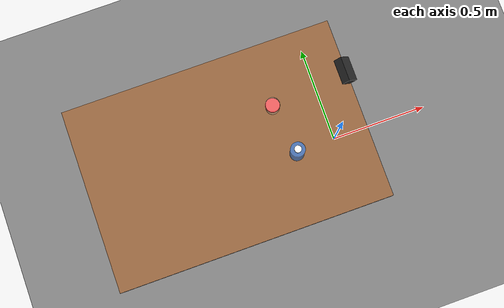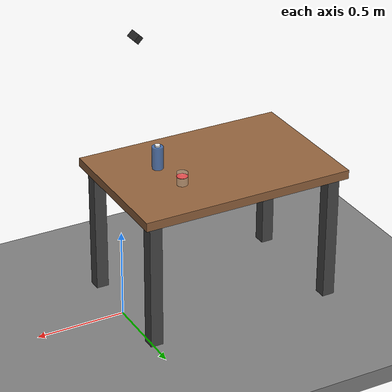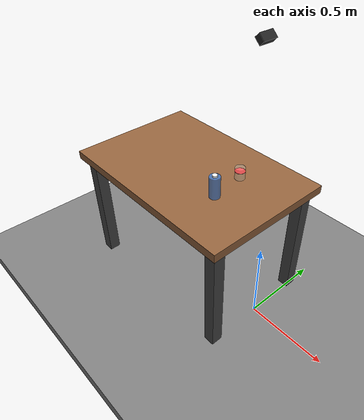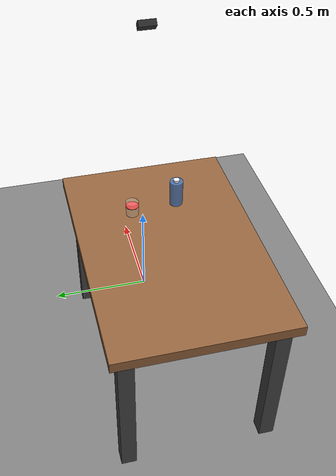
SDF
<?xml version="1.0" ?>
<sdf version="1.8">
  <world name="empty">
    <gravity>0 0 -9.8</gravity>

    <plugin filename="gz-sim-physics-system" name="gz::sim::systems::Physics"/>
    <plugin filename="gz-sim-user-commands-system" name="gz::sim::systems::UserCommands"/>
    <plugin filename="gz-sim-scene-broadcaster-system" name="gz::sim::systems::SceneBroadcaster"/>
    <plugin filename="gz-sim-sensors-system" name="gz::sim::systems::Sensors">
      <render_engine>ogre2</render_engine>
    </plugin>
    <plugin filename="gz-sim-contact-system" name="gz::sim::systems::Contact"/>

    <light type="directional" name="sun">
      <cast_shadows>true</cast_shadows>
      <pose>0 0 10 0 0 0</pose>
      <diffuse>0.8 0.8 0.8 1</diffuse>
      <specular>0.2 0.2 0.2 1</specular>
      <attenuation>
        <range>1000</range>
        <constant>0.9</constant>
        <linear>0.01</linear>
        <quadratic>0.001</quadratic>
      </attenuation>
      <direction>-0.5 0.1 -0.9</direction>
    </light>

    <!-- ══════════════════════════════════════════════════════════
         Ground Plane
         ══════════════════════════════════════════════════════════ -->
    <model name="ground_plane">
      <static>true</static>
      <pose>0 0 -0.05 0 0 0</pose>
      <link name="link">
        <collision name="collision">
          <geometry>
            <box><size>100 100 0.1</size></box>
          </geometry>
        </collision>
        <visual name="visual">
          <geometry>
            <box><size>100 100 0.1</size></box>
          </geometry>
          <material>
            <ambient>0.3 0.3 0.3 1</ambient>
            <diffuse>0.5 0.5 0.5 1</diffuse>
            <specular>0.1 0.1 0.1 1</specular>
          </material>
        </visual>
      </link>
    </model>

    <!-- ══════════════════════════════════════════════════════════
         Workbench Table
         ══════════════════════════════════════════════════════════ -->
    <model name="workbench_table">
      <static>true</static>
      <pose>-0.55 0 0 0 0 0</pose>
      <link name="table_link">
        <collision name="top_collision">
          <pose>0 0 0.75 0 0 0</pose>
          <geometry>
            <box><size>1.2 0.8 0.05</size></box>
          </geometry>
          <surface>
            <friction>
              <ode><mu>1.0</mu><mu2>1.0</mu2></ode>
            </friction>
          </surface>
        </collision>
        <visual name="top_visual">
          <pose>0 0 0.75 0 0 0</pose>
          <geometry>
            <box><size>1.2 0.8 0.05</size></box>
          </geometry>
          <material>
            <ambient>0.48 0.32 0.20 1</ambient>
            <diffuse>0.58 0.39 0.24 1</diffuse>
            <specular>0.12 0.12 0.12 1</specular>
          </material>
        </visual>

        <collision name="leg_fl_collision">
          <pose>0.53 0.33 0.375 0 0 0</pose>
          <geometry><box><size>0.07 0.07 0.75</size></box></geometry>
        </collision>
        <collision name="leg_fr_collision">
          <pose>0.53 -0.33 0.375 0 0 0</pose>
          <geometry><box><size>0.07 0.07 0.75</size></box></geometry>
        </collision>
        <collision name="leg_rl_collision">
          <pose>-0.53 0.33 0.375 0 0 0</pose>
          <geometry><box><size>0.07 0.07 0.75</size></box></geometry>
        </collision>
        <collision name="leg_rr_collision">
          <pose>-0.53 -0.33 0.375 0 0 0</pose>
          <geometry><box><size>0.07 0.07 0.75</size></box></geometry>
        </collision>

        <visual name="leg_fl_visual">
          <pose>0.53 0.33 0.375 0 0 0</pose>
          <geometry><box><size>0.07 0.07 0.75</size></box></geometry>
          <material><ambient>0.2 0.2 0.2 1</ambient><diffuse>0.28 0.28 0.28 1</diffuse></material>
        </visual>
        <visual name="leg_fr_visual">
          <pose>0.53 -0.33 0.375 0 0 0</pose>
          <geometry><box><size>0.07 0.07 0.75</size></box></geometry>
          <material><ambient>0.2 0.2 0.2 1</ambient><diffuse>0.28 0.28 0.28 1</diffuse></material>
        </visual>
        <visual name="leg_rl_visual">
          <pose>-0.53 0.33 0.375 0 0 0</pose>
          <geometry><box><size>0.07 0.07 0.75</size></box></geometry>
          <material><ambient>0.2 0.2 0.2 1</ambient><diffuse>0.28 0.28 0.28 1</diffuse></material>
        </visual>
        <visual name="leg_rr_visual">
          <pose>-0.53 -0.33 0.375 0 0 0</pose>
          <geometry><box><size>0.07 0.07 0.75</size></box></geometry>
          <material><ambient>0.2 0.2 0.2 1</ambient><diffuse>0.28 0.28 0.28 1</diffuse></material>
        </visual>
      </link>
    </model>

    <!-- ══════════════════════════════════════════════════════════
         Water Bottle (DYNAMIC — graspable)
         ══════════════════════════════════════════════════════════ -->
    <model name="water_bottle">
      <pose>-0.27 -0.10 0.839 0 0 0</pose>
      <link name="bottle_link">
        <inertial>
          <mass>0.15</mass>
          <inertia>
            <ixx>3.5e-04</ixx><iyy>3.5e-04</iyy><izz>7.2e-05</izz>
            <ixy>0</ixy><ixz>0</ixz><iyz>0</iyz>
          </inertia>
        </inertial>
        <collision name="collision">
          <geometry>
            <cylinder><radius>0.031</radius><length>0.128</length></cylinder>
          </geometry>
          <surface>
            <friction>
              <ode><mu>1.2</mu><mu2>1.2</mu2></ode>
            </friction>
            <contact>
              <ode>
                <kp>1e6</kp><kd>100</kd>
                <max_vel>0.01</max_vel><min_depth>0.001</min_depth>
              </ode>
            </contact>
          </surface>
        </collision>
        <visual name="bottle_body">
          <geometry>
            <cylinder><radius>0.031</radius><length>0.128</length></cylinder>
          </geometry>
          <material>
            <ambient>0.15 0.4 0.85 0.7</ambient>
            <diffuse>0.2 0.5 0.9 0.7</diffuse>
            <specular>0.5 0.5 0.5 1</specular>
          </material>
        </visual>
        <visual name="bottle_cap">
          <pose>0 0 0.069 0 0 0</pose>
          <geometry>
            <cylinder><radius>0.015</radius><length>0.01</length></cylinder>
          </geometry>
          <material>
            <ambient>0.9 0.9 0.9 1</ambient>
            <diffuse>1.0 1.0 1.0 1</diffuse>
          </material>
        </visual>
        <visual name="water_inside">
          <pose>0 0 -0.01 0 0 0</pose>
          <geometry>
            <cylinder><radius>0.028</radius><length>0.09</length></cylinder>
          </geometry>
          <material>
            <ambient>0.1 0.3 0.9 0.4</ambient>
            <diffuse>0.1 0.4 1.0 0.4</diffuse>
          </material>
        </visual>
      </link>
    </model>

    <!-- ══════════════════════════════════════════════════════════
         Target Beaker / Measuring Glass (DYNAMIC)
         ══════════════════════════════════════════════════════════ -->
    <model name="target_glass">
      <pose>-0.30 0.12 0.810 0 0 0</pose>
      <link name="beaker_link">
        <inertial>
          <mass>0.08</mass>
          <inertia>
            <ixx>1.2e-04</ixx><iyy>1.2e-04</iyy><izz>3.6e-05</izz>
            <ixy>0</ixy><ixz>0</ixz><iyz>0</iyz>
          </inertia>
        </inertial>
        <collision name="collision">
          <geometry>
            <cylinder><radius>0.03</radius><length>0.07</length></cylinder>
          </geometry>
          <surface>
            <friction>
              <ode><mu>0.8</mu><mu2>0.8</mu2></ode>
            </friction>
            <contact>
              <ode>
                <kp>1e6</kp><kd>100</kd>
                <max_vel>0.01</max_vel><min_depth>0.001</min_depth>
              </ode>
            </contact>
          </surface>
        </collision>
        <visual name="beaker_body">
          <geometry>
            <cylinder><radius>0.03</radius><length>0.07</length></cylinder>
          </geometry>
          <material>
            <ambient>0.7 0.85 0.85 0.25</ambient>
            <diffuse>0.8 0.9 0.9 0.25</diffuse>
            <specular>0.6 0.6 0.6 1</specular>
          </material>
        </visual>
        <visual name="mark_100ml">
          <pose>0 0 0.012 0 0 0</pose>
          <geometry>
            <cylinder><radius>0.031</radius><length>0.001</length></cylinder>
          </geometry>
          <material>
            <ambient>0.9 0.1 0.1 1</ambient>
            <diffuse>1.0 0.2 0.2 1</diffuse>
          </material>
        </visual>
      </link>
    </model>

    <!-- ══════════════════════════════════════════════════════════
         External Overhead Camera (fixed, for YOLO detection)
         ══════════════════════════════════════════════════════════ -->
    <model name="external_camera_mount">
      <static>true</static>
      <pose>-0.10 0.0 1.6 0 0.7854 0</pose>
      <link name="camera_link">
        <visual name="camera_box">
          <geometry>
            <box><size>0.04 0.08 0.03</size></box>
          </geometry>
          <material>
            <ambient>0.1 0.1 0.1 1</ambient>
            <diffuse>0.15 0.15 0.15 1</diffuse>
          </material>
        </visual>
        <sensor name="external_rgbd" type="rgbd_camera">
          <always_on>true</always_on>
          <update_rate>15</update_rate>
          <visualize>true</visualize>
          <topic>/external_camera</topic>
          <camera>
            <horizontal_fov>1.2217</horizontal_fov>
            <image>
              <width>640</width>
              <height>480</height>
              <format>R8G8B8</format>
            </image>
            <clip>
              <near>0.05</near>
              <far>5.0</far>
            </clip>
            <depth_camera>
              <output>depths</output>
              <clip>
                <near>0.05</near>
                <far>5.0</far>
              </clip>
            </depth_camera>
          </camera>
        </sensor>
      </link>
    </model>

  </world>
</sdf>
